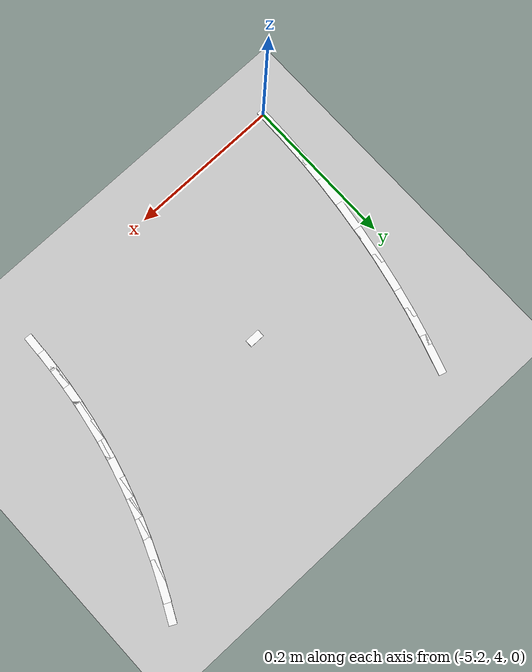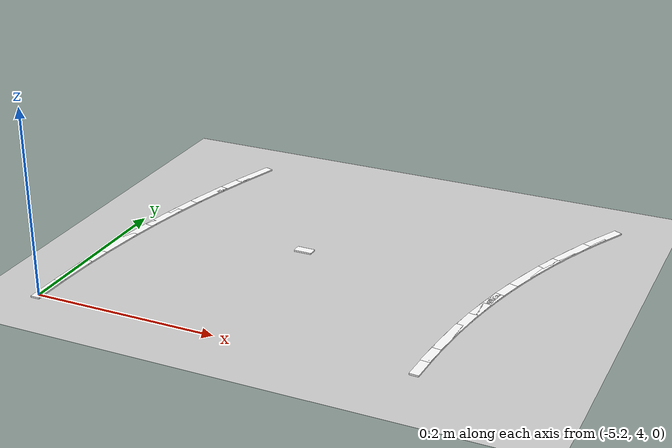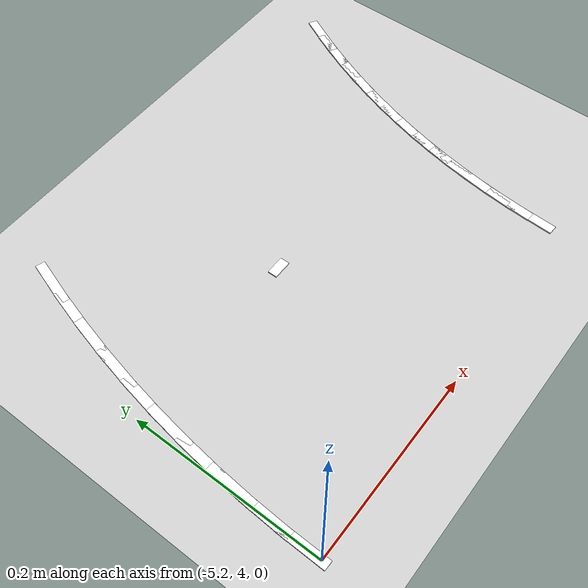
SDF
<sdf version="1.7">
 <world name="default">
  <model name="ground_plane">
   <static>1</static>
   <link name="link">
    <collision name="collision">
     <geometry><plane><normal>0 0 1</normal><size>100 100</size></plane></geometry>
     <surface>
      <contact><collide_bitmask>65535</collide_bitmask></contact>
      <friction><ode><mu>100</mu><mu2>50</mu2></ode></friction>
     </surface>
    </collision>
    <visual name="visual">
     <cast_shadows>0</cast_shadows>
     <geometry><plane><normal>0 0 1</normal><size>100 100</size></plane></geometry>
     <material>
      <script><uri>file://media/materials/scripts/gazebo.material</uri><name>Gazebo/Grey</name></script>
     </material>
    </visual>
   </link>
  </model>
  <model name="lane_line_left_284">
   <static>1</static>
   <link name="link">
    <pose>0 0 -0.004 0 -0 0</pose>
    <visual name="visual">
     <geometry><box><size>0.0521 0.01 0.01</size></box></geometry>
     <material><ambient>1 1 1 1</ambient><diffuse>1 1 1 1</diffuse></material>
    </visual>
    <collision name="collision"><geometry><box><size>0.0521 0.01 0.01</size></box></geometry></collision>
   </link>
   <pose>-4.715 4.35856 0 0 0 -2.03562</pose>
  </model>
  <model name="lane_line_left_285">
   <static>1</static>
   <link name="link">
    <pose>0 0 -0.004 0 -0 0</pose>
    <visual name="visual">
     <geometry><box><size>0.0521 0.01 0.01</size></box></geometry>
     <material><ambient>1 1 1 1</ambient><diffuse>1 1 1 1</diffuse></material>
    </visual>
    <collision name="collision"><geometry><box><size>0.0521 0.01 0.01</size></box></geometry></collision>
   </link>
   <pose>-4.72613 4.33546 0 0 0 -2.00357</pose>
  </model>
  <model name="lane_line_left_286">
   <static>1</static>
   <link name="link">
    <pose>0 0 -0.004 0 -0 0</pose>
    <visual name="visual">
     <geometry><box><size>0.0521 0.01 0.01</size></box></geometry>
     <material><ambient>1 1 1 1</ambient><diffuse>1 1 1 1</diffuse></material>
    </visual>
    <collision name="collision"><geometry><box><size>0.0521 0.01 0.01</size></box></geometry></collision>
   </link>
   <pose>-4.73651 4.31201 0 0 0 -1.97151</pose>
  </model>
  <model name="lane_line_left_287">
   <static>1</static>
   <link name="link">
    <pose>0 0 -0.004 0 -0 0</pose>
    <visual name="visual">
     <geometry><box><size>0.0521 0.01 0.01</size></box></geometry>
     <material><ambient>1 1 1 1</ambient><diffuse>1 1 1 1</diffuse></material>
    </visual>
    <collision name="collision"><geometry><box><size>0.0521 0.01 0.01</size></box></geometry></collision>
   </link>
   <pose>-4.74613 4.28824 0 0 0 -1.93945</pose>
  </model>
  <model name="lane_line_left_288">
   <static>1</static>
   <link name="link">
    <pose>0 0 -0.004 0 -0 0</pose>
    <visual name="visual">
     <geometry><box><size>0.0521 0.01 0.01</size></box></geometry>
     <material><ambient>1 1 1 1</ambient><diffuse>1 1 1 1</diffuse></material>
    </visual>
    <collision name="collision"><geometry><box><size>0.0521 0.01 0.01</size></box></geometry></collision>
   </link>
   <pose>-4.75499 4.26418 0 0 0 -1.9074</pose>
  </model>
  <model name="lane_line_left_289">
   <static>1</static>
   <link name="link">
    <pose>0 0 -0.004 0 -0 0</pose>
    <visual name="visual">
     <geometry><box><size>0.0521 0.01 0.01</size></box></geometry>
     <material><ambient>1 1 1 1</ambient><diffuse>1 1 1 1</diffuse></material>
    </visual>
    <collision name="collision"><geometry><box><size>0.0521 0.01 0.01</size></box></geometry></collision>
   </link>
   <pose>-4.76306 4.23985 0 0 0 -1.87534</pose>
  </model>
  <model name="lane_line_right_289">
   <static>1</static>
   <link name="link">
    <pose>0 0 -0.004 0 -0 0</pose>
    <visual name="visual">
     <geometry><box><size>0.0521 0.01 0.01</size></box></geometry>
     <material><ambient>1 1 1 1</ambient><diffuse>1 1 1 1</diffuse></material>
    </visual>
    <collision name="collision"><geometry><box><size>0.0521 0.01 0.01</size></box></geometry></collision>
   </link>
   <pose>-5.14466 4.35979 0 0 0 -1.87534</pose>
  </model>
  <model name="lane_line_left_290">
   <static>1</static>
   <link name="link">
    <pose>0 0 -0.004 0 -0 0</pose>
    <visual name="visual">
     <geometry><box><size>0.0521 0.01 0.01</size></box></geometry>
     <material><ambient>1 1 1 1</ambient><diffuse>1 1 1 1</diffuse></material>
    </visual>
    <collision name="collision"><geometry><box><size>0.0521 0.01 0.01</size></box></geometry></collision>
   </link>
   <pose>-4.77036 4.21527 0 0 0 -1.84328</pose>
  </model>
  <model name="lane_line_right_290">
   <static>1</static>
   <link name="link">
    <pose>0 0 -0.004 0 -0 0</pose>
    <visual name="visual">
     <geometry><box><size>0.0521 0.01 0.01</size></box></geometry>
     <material><ambient>1 1 1 1</ambient><diffuse>1 1 1 1</diffuse></material>
    </visual>
    <collision name="collision"><geometry><box><size>0.0521 0.01 0.01</size></box></geometry></collision>
   </link>
   <pose>-5.1556 4.32292 0 0 0 -1.84328</pose>
  </model>
  <model name="lane_line_left_291">
   <static>1</static>
   <link name="link">
    <pose>0 0 -0.004 0 -0 0</pose>
    <visual name="visual">
     <geometry><box><size>0.0521 0.01 0.01</size></box></geometry>
     <material><ambient>1 1 1 1</ambient><diffuse>1 1 1 1</diffuse></material>
    </visual>
    <collision name="collision"><geometry><box><size>0.0521 0.01 0.01</size></box></geometry></collision>
   </link>
   <pose>-4.77686 4.19046 0 0 0 -1.81122</pose>
  </model>
  <model name="lane_line_right_291">
   <static>1</static>
   <link name="link">
    <pose>0 0 -0.004 0 -0 0</pose>
    <visual name="visual">
     <geometry><box><size>0.0521 0.01 0.01</size></box></geometry>
     <material><ambient>1 1 1 1</ambient><diffuse>1 1 1 1</diffuse></material>
    </visual>
    <collision name="collision"><geometry><box><size>0.0521 0.01 0.01</size></box></geometry></collision>
   </link>
   <pose>-5.16536 4.28571 0 0 0 -1.81122</pose>
  </model>
  <model name="lane_line_left_292">
   <static>1</static>
   <link name="link">
    <pose>0 0 -0.004 0 -0 0</pose>
    <visual name="visual">
     <geometry><box><size>0.0521 0.01 0.01</size></box></geometry>
     <material><ambient>1 1 1 1</ambient><diffuse>1 1 1 1</diffuse></material>
    </visual>
    <collision name="collision"><geometry><box><size>0.0521 0.01 0.01</size></box></geometry></collision>
   </link>
   <pose>-4.78257 4.16547 0 0 0 -1.77917</pose>
  </model>
  <model name="lane_line_right_292">
   <static>1</static>
   <link name="link">
    <pose>0 0 -0.004 0 -0 0</pose>
    <visual name="visual">
     <geometry><box><size>0.0521 0.01 0.01</size></box></geometry>
     <material><ambient>1 1 1 1</ambient><diffuse>1 1 1 1</diffuse></material>
    </visual>
    <collision name="collision"><geometry><box><size>0.0521 0.01 0.01</size></box></geometry></collision>
   </link>
   <pose>-5.17392 4.24821 0 0 0 -1.77917</pose>
  </model>
  <model name="lane_line_left_293">
   <static>1</static>
   <link name="link">
    <pose>0 0 -0.004 0 -0 0</pose>
    <visual name="visual">
     <geometry><box><size>0.0521 0.01 0.01</size></box></geometry>
     <material><ambient>1 1 1 1</ambient><diffuse>1 1 1 1</diffuse></material>
    </visual>
    <collision name="collision"><geometry><box><size>0.0521 0.01 0.01</size></box></geometry></collision>
   </link>
   <pose>-4.78747 4.1403 0 0 0 -1.74711</pose>
  </model>
  <model name="lane_line_right_293">
   <static>1</static>
   <link name="link">
    <pose>0 0 -0.004 0 -0 0</pose>
    <visual name="visual">
     <geometry><box><size>0.0521 0.01 0.01</size></box></geometry>
     <material><ambient>1 1 1 1</ambient><diffuse>1 1 1 1</diffuse></material>
    </visual>
    <collision name="collision"><geometry><box><size>0.0521 0.01 0.01</size></box></geometry></collision>
   </link>
   <pose>-5.18127 4.21046 0 0 0 -1.74711</pose>
  </model>
  <model name="lane_line_left_294">
   <static>1</static>
   <link name="link">
    <pose>0 0 -0.004 0 -0 0</pose>
    <visual name="visual">
     <geometry><box><size>0.0521 0.01 0.01</size></box></geometry>
     <material><ambient>1 1 1 1</ambient><diffuse>1 1 1 1</diffuse></material>
    </visual>
    <collision name="collision"><geometry><box><size>0.0521 0.01 0.01</size></box></geometry></collision>
   </link>
   <pose>-4.79156 4.11499 0 0 0 -1.71505</pose>
  </model>
  <model name="lane_line_right_294">
   <static>1</static>
   <link name="link">
    <pose>0 0 -0.004 0 -0 0</pose>
    <visual name="visual">
     <geometry><box><size>0.0521 0.01 0.01</size></box></geometry>
     <material><ambient>1 1 1 1</ambient><diffuse>1 1 1 1</diffuse></material>
    </visual>
    <collision name="collision"><geometry><box><size>0.0521 0.01 0.01</size></box></geometry></collision>
   </link>
   <pose>-5.18741 4.17249 0 0 0 -1.71505</pose>
  </model>
  <model name="lane_line_left_295">
   <static>1</static>
   <link name="link">
    <pose>0 0 -0.004 0 -0 0</pose>
    <visual name="visual">
     <geometry><box><size>0.0521 0.01 0.01</size></box></geometry>
     <material><ambient>1 1 1 1</ambient><diffuse>1 1 1 1</diffuse></material>
    </visual>
    <collision name="collision"><geometry><box><size>0.0521 0.01 0.01</size></box></geometry></collision>
   </link>
   <pose>-4.79484 4.08956 0 0 0 -1.683</pose>
  </model>
  <model name="lane_line_right_295">
   <static>1</static>
   <link name="link">
    <pose>0 0 -0.004 0 -0 0</pose>
    <visual name="visual">
     <geometry><box><size>0.0521 0.01 0.01</size></box></geometry>
     <material><ambient>1 1 1 1</ambient><diffuse>1 1 1 1</diffuse></material>
    </visual>
    <collision name="collision"><geometry><box><size>0.0521 0.01 0.01</size></box></geometry></collision>
   </link>
   <pose>-5.19233 4.13434 0 0 0 -1.683</pose>
  </model>
  <model name="lane_line_left_296">
   <static>1</static>
   <link name="link">
    <pose>0 0 -0.004 0 -0 0</pose>
    <visual name="visual">
     <geometry><box><size>0.0521 0.01 0.01</size></box></geometry>
     <material><ambient>1 1 1 1</ambient><diffuse>1 1 1 1</diffuse></material>
    </visual>
    <collision name="collision"><geometry><box><size>0.0521 0.01 0.01</size></box></geometry></collision>
   </link>
   <pose>-4.7973 4.06404 0 0 0 -1.65094</pose>
  </model>
  <model name="lane_line_right_296">
   <static>1</static>
   <link name="link">
    <pose>0 0 -0.004 0 -0 0</pose>
    <visual name="visual">
     <geometry><box><size>0.0521 0.01 0.01</size></box></geometry>
     <material><ambient>1 1 1 1</ambient><diffuse>1 1 1 1</diffuse></material>
    </visual>
    <collision name="collision"><geometry><box><size>0.0521 0.01 0.01</size></box></geometry></collision>
   </link>
   <pose>-5.19602 4.09606 0 0 0 -1.65094</pose>
  </model>
  <model name="lane_line_left_297">
   <static>1</static>
   <link name="link">
    <pose>0 0 -0.004 0 -0 0</pose>
    <visual name="visual">
     <geometry><box><size>0.0521 0.01 0.01</size></box></geometry>
     <material><ambient>1 1 1 1</ambient><diffuse>1 1 1 1</diffuse></material>
    </visual>
    <collision name="collision"><geometry><box><size>0.0521 0.01 0.01</size></box></geometry></collision>
   </link>
   <pose>-4.79895 4.03845 0 0 0 -1.61888</pose>
  </model>
  <model name="lane_line_right_297">
   <static>1</static>
   <link name="link">
    <pose>0 0 -0.004 0 -0 0</pose>
    <visual name="visual">
     <geometry><box><size>0.0521 0.01 0.01</size></box></geometry>
     <material><ambient>1 1 1 1</ambient><diffuse>1 1 1 1</diffuse></material>
    </visual>
    <collision name="collision"><geometry><box><size>0.0521 0.01 0.01</size></box></geometry></collision>
   </link>
   <pose>-5.19848 4.05767 0 0 0 -1.61888</pose>
  </model>
  <model name="lane_line_right_298">
   <static>1</static>
   <link name="link">
    <pose>0 0 -0.004 0 -0 0</pose>
    <visual name="visual">
     <geometry><box><size>0.0521 0.01 0.01</size></box></geometry>
     <material><ambient>1 1 1 1</ambient><diffuse>1 1 1 1</diffuse></material>
    </visual>
    <collision name="collision"><geometry><box><size>0.0521 0.01 0.01</size></box></geometry></collision>
   </link>
   <pose>-5.19972 4.01923 0 0 0 -1.58682</pose>
  </model>
  <model name="lane_line_left_299">
   <static>1</static>
   <link name="link">
    <pose>0 0 -0.004 0 -0 0</pose>
    <visual name="visual">
     <geometry><box><size>0.02 0.01 0.01</size></box></geometry>
     <material><ambient>1 1 1 1</ambient><diffuse>1 1 1 1</diffuse></material>
    </visual>
    <collision name="collision"><geometry><box><size>0.02 0.01 0.01</size></box></geometry></collision>
   </link>
   <pose>-5 4.2 0 0 -0 0</pose>
  </model>
 </world>
</sdf>
